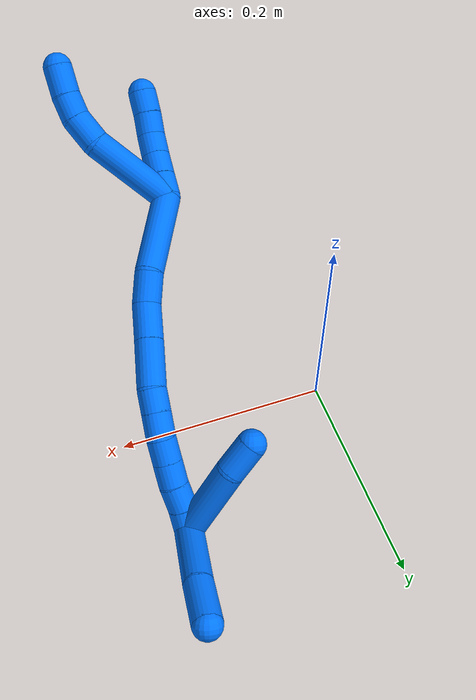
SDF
<sdf version="1.7">
 <world name="default">
  <model name="14">
   <static>0</static>
   <link name="14">
    <collision name="collision-cylinder-e_1_2_8">
     <pose>0.027162 -0.014382 0.022871 0.561353 0.78808 0.238593</pose>
     <geometry><cylinder><radius>0.0125</radius><length>0.076622</length></cylinder></geometry>
     <surface>
      <friction><ode><mu>1.16</mu><mu2>1.16</mu2><slip1>0</slip1><slip2>0</slip2></ode></friction>
      <contact><ode><kp>1e+06</kp><kd>1</kd><max_vel>0</max_vel><min_depth>0.001</min_depth></ode></contact>
     </surface>
    </collision>
    <visual name="visual-cylinder-e_1_2_8">
     <pose>0.027162 -0.014382 0.022871 0.561353 0.78808 0.238593</pose>
     <geometry><cylinder><radius>0.0125</radius><length>0.076622</length></cylinder></geometry>
     <material><ambient>0 0.462745 1 1</ambient></material>
    </visual>
    <collision name="collision-cylinder-e_2_8_9">
     <pose>0.060498 -0.034363 0.056399 0.483742 0.473828 0.11899</pose>
     <geometry><cylinder><radius>0.0125</radius><length>0.027058</length></cylinder></geometry>
     <surface>
      <friction><ode><mu>1.16</mu><mu2>1.16</mu2><slip1>0</slip1><slip2>0</slip2></ode></friction>
      <contact><ode><kp>1e+06</kp><kd>1</kd><max_vel>0</max_vel><min_depth>0.001</min_depth></ode></contact>
     </surface>
    </collision>
    <visual name="visual-cylinder-e_2_8_9">
     <pose>0.060498 -0.034363 0.056399 0.483742 0.473828 0.11899</pose>
     <geometry><cylinder><radius>0.0125</radius><length>0.027058</length></cylinder></geometry>
     <material><ambient>0 0.462745 1 1</ambient></material>
    </visual>
    <collision name="collision-cylinder-e_3_9_10">
     <pose>0.069905 -0.04219 0.076584 0.229696 0.319222 0.037136</pose>
     <geometry><cylinder><radius>0.0125</radius><length>0.02061</length></cylinder></geometry>
     <surface>
      <friction><ode><mu>1.16</mu><mu2>1.16</mu2><slip1>0</slip1><slip2>0</slip2></ode></friction>
      <contact><ode><kp>1e+06</kp><kd>1</kd><max_vel>0</max_vel><min_depth>0.001</min_depth></ode></contact>
     </surface>
    </collision>
    <visual name="visual-cylinder-e_3_9_10">
     <pose>0.069905 -0.04219 0.076584 0.229696 0.319222 0.037136</pose>
     <geometry><cylinder><radius>0.0125</radius><length>0.02061</length></cylinder></geometry>
     <material><ambient>0 0.462745 1 1</ambient></material>
    </visual>
    <collision name="collision-cylinder-e_4_10_6">
     <pose>0.075699 -0.046611 0.098517 0.174971 0.200427 0.017638</pose>
     <geometry><cylinder><radius>0.0125</radius><length>0.02571</length></cylinder></geometry>
     <surface>
      <friction><ode><mu>1.16</mu><mu2>1.16</mu2><slip1>0</slip1><slip2>0</slip2></ode></friction>
      <contact><ode><kp>1e+06</kp><kd>1</kd><max_vel>0</max_vel><min_depth>0.001</min_depth></ode></contact>
     </surface>
    </collision>
    <visual name="visual-cylinder-e_4_10_6">
     <pose>0.075699 -0.046611 0.098517 0.174971 0.200427 0.017638</pose>
     <geometry><cylinder><radius>0.0125</radius><length>0.02571</length></cylinder></geometry>
     <material><ambient>0 0.462745 1 1</ambient></material>
    </visual>
    <collision name="collision-cylinder-e_1_2_11">
     <pose>0.000128 -0.003327 0.00943 0.339153 0.012796 0.002191</pose>
     <geometry><cylinder><radius>0.0125</radius><length>0.02</length></cylinder></geometry>
     <surface>
      <friction><ode><mu>1.16</mu><mu2>1.16</mu2><slip1>0</slip1><slip2>0</slip2></ode></friction>
      <contact><ode><kp>1e+06</kp><kd>1</kd><max_vel>0</max_vel><min_depth>0.001</min_depth></ode></contact>
     </surface>
    </collision>
    <visual name="visual-cylinder-e_1_2_11">
     <pose>0.000128 -0.003327 0.00943 0.339153 0.012796 0.002191</pose>
     <geometry><cylinder><radius>0.0125</radius><length>0.02</length></cylinder></geometry>
     <material><ambient>0 0.462745 1 1</ambient></material>
    </visual>
    <collision name="collision-cylinder-e_2_11_12">
     <pose>0.000118 -0.01008 0.028253 0.349851 -0.01375 -0.00243</pose>
     <geometry><cylinder><radius>0.0125</radius><length>0.02</length></cylinder></geometry>
     <surface>
      <friction><ode><mu>1.16</mu><mu2>1.16</mu2><slip1>0</slip1><slip2>0</slip2></ode></friction>
      <contact><ode><kp>1e+06</kp><kd>1</kd><max_vel>0</max_vel><min_depth>0.001</min_depth></ode></contact>
     </surface>
    </collision>
    <visual name="visual-cylinder-e_2_11_12">
     <pose>0.000118 -0.01008 0.028253 0.349851 -0.01375 -0.00243</pose>
     <geometry><cylinder><radius>0.0125</radius><length>0.02</length></cylinder></geometry>
     <material><ambient>0 0.462745 1 1</ambient></material>
    </visual>
    <collision name="collision-cylinder-e_3_12_13">
     <pose>-9.3e-05 -0.016546 0.047173 0.308663 -0.007392 -0.00115</pose>
     <geometry><cylinder><radius>0.0125</radius><length>0.02</length></cylinder></geometry>
     <surface>
      <friction><ode><mu>1.16</mu><mu2>1.16</mu2><slip1>0</slip1><slip2>0</slip2></ode></friction>
      <contact><ode><kp>1e+06</kp><kd>1</kd><max_vel>0</max_vel><min_depth>0.001</min_depth></ode></contact>
     </surface>
    </collision>
    <visual name="visual-cylinder-e_3_12_13">
     <pose>-9.3e-05 -0.016546 0.047173 0.308663 -0.007392 -0.00115</pose>
     <geometry><cylinder><radius>0.0125</radius><length>0.02</length></cylinder></geometry>
     <material><ambient>0 0.462745 1 1</ambient></material>
    </visual>
    <collision name="collision-cylinder-e_4_13_14">
     <pose>0.000756 -0.020778 0.066586 0.120281 0.09242 0.005569</pose>
     <geometry><cylinder><radius>0.0125</radius><length>0.02</length></cylinder></geometry>
     <surface>
      <friction><ode><mu>1.16</mu><mu2>1.16</mu2><slip1>0</slip1><slip2>0</slip2></ode></friction>
      <contact><ode><kp>1e+06</kp><kd>1</kd><max_vel>0</max_vel><min_depth>0.001</min_depth></ode></contact>
     </surface>
    </collision>
    <visual name="visual-cylinder-e_4_13_14">
     <pose>0.000756 -0.020778 0.066586 0.120281 0.09242 0.005569</pose>
     <geometry><cylinder><radius>0.0125</radius><length>0.02</length></cylinder></geometry>
     <material><ambient>0 0.462745 1 1</ambient></material>
    </visual>
    <collision name="collision-cylinder-e_5_14_5">
     <pose>0.003051 -0.023698 0.086225 0.175006 0.137669 0.012096</pose>
     <geometry><cylinder><radius>0.0125</radius><length>0.02</length></cylinder></geometry>
     <surface>
      <friction><ode><mu>1.16</mu><mu2>1.16</mu2><slip1>0</slip1><slip2>0</slip2></ode></friction>
      <contact><ode><kp>1e+06</kp><kd>1</kd><max_vel>0</max_vel><min_depth>0.001</min_depth></ode></contact>
     </surface>
    </collision>
    <visual name="visual-cylinder-e_5_14_5">
     <pose>0.003051 -0.023698 0.086225 0.175006 0.137669 0.012096</pose>
     <geometry><cylinder><radius>0.0125</radius><length>0.02</length></cylinder></geometry>
     <material><ambient>0 0.462745 1 1</ambient></material>
    </visual>
    <collision name="collision-cylinder-e_1_2_15">
     <pose>0.015192 0.005304 -0.033649 -2.98526 0.419515 -2.43649</pose>
     <geometry><cylinder><radius>0.0125</radius><length>0.074597</length></cylinder></geometry>
     <surface>
      <friction><ode><mu>1.16</mu><mu2>1.16</mu2><slip1>0</slip1><slip2>0</slip2></ode></friction>
      <contact><ode><kp>1e+06</kp><kd>1</kd><max_vel>0</max_vel><min_depth>0.001</min_depth></ode></contact>
     </surface>
    </collision>
    <visual name="visual-cylinder-e_1_2_15">
     <pose>0.015192 0.005304 -0.033649 -2.98526 0.419515 -2.43649</pose>
     <geometry><cylinder><radius>0.0125</radius><length>0.074597</length></cylinder></geometry>
     <material><ambient>0 0.462745 1 1</ambient></material>
    </visual>
    <collision name="collision-cylinder-e_2_15_16">
     <pose>0.032577 0.011092 -0.081132 -3.10656 0.157071 -2.70353</pose>
     <geometry><cylinder><radius>0.0125</radius><length>0.028032</length></cylinder></geometry>
     <surface>
      <friction><ode><mu>1.16</mu><mu2>1.16</mu2><slip1>0</slip1><slip2>0</slip2></ode></friction>
      <contact><ode><kp>1e+06</kp><kd>1</kd><max_vel>0</max_vel><min_depth>0.001</min_depth></ode></contact>
     </surface>
    </collision>
    <visual name="visual-cylinder-e_2_15_16">
     <pose>0.032577 0.011092 -0.081132 -3.10656 0.157071 -2.70353</pose>
     <geometry><cylinder><radius>0.0125</radius><length>0.028032</length></cylinder></geometry>
     <material><ambient>0 0.462745 1 1</ambient></material>
    </visual>
    <collision name="collision-cylinder-e_3_16_17">
     <pose>0.03767 0.016243 -0.110374 -2.84754 0.178253 -1.08586</pose>
     <geometry><cylinder><radius>0.0125</radius><length>0.032714</length></cylinder></geometry>
     <surface>
      <friction><ode><mu>1.16</mu><mu2>1.16</mu2><slip1>0</slip1><slip2>0</slip2></ode></friction>
      <contact><ode><kp>1e+06</kp><kd>1</kd><max_vel>0</max_vel><min_depth>0.001</min_depth></ode></contact>
     </surface>
    </collision>
    <visual name="visual-cylinder-e_3_16_17">
     <pose>0.03767 0.016243 -0.110374 -2.84754 0.178253 -1.08586</pose>
     <geometry><cylinder><radius>0.0125</radius><length>0.032714</length></cylinder></geometry>
     <material><ambient>0 0.462745 1 1</ambient></material>
    </visual>
    <collision name="collision-cylinder-e_4_17_18">
     <pose>0.044348 0.026605 -0.145471 -2.85998 0.182247 -1.14523</pose>
     <geometry><cylinder><radius>0.0125</radius><length>0.041687</length></cylinder></geometry>
     <surface>
      <friction><ode><mu>1.16</mu><mu2>1.16</mu2><slip1>0</slip1><slip2>0</slip2></ode></friction>
      <contact><ode><kp>1e+06</kp><kd>1</kd><max_vel>0</max_vel><min_depth>0.001</min_depth></ode></contact>
     </surface>
    </collision>
    <visual name="visual-cylinder-e_4_17_18">
     <pose>0.044348 0.026605 -0.145471 -2.85998 0.182247 -1.14523</pose>
     <geometry><cylinder><radius>0.0125</radius><length>0.041687</length></cylinder></geometry>
     <material><ambient>0 0.462745 1 1</ambient></material>
    </visual>
    <collision name="collision-cylinder-e_5_18_19">
     <pose>0.047969 0.034764 -0.175016 -2.89666 -0.01537 0.124713</pose>
     <geometry><cylinder><radius>0.0125</radius><length>0.020317</length></cylinder></geometry>
     <surface>
      <friction><ode><mu>1.16</mu><mu2>1.16</mu2><slip1>0</slip1><slip2>0</slip2></ode></friction>
      <contact><ode><kp>1e+06</kp><kd>1</kd><max_vel>0</max_vel><min_depth>0.001</min_depth></ode></contact>
     </surface>
    </collision>
    <visual name="visual-cylinder-e_5_18_19">
     <pose>0.047969 0.034764 -0.175016 -2.89666 -0.01537 0.124713</pose>
     <geometry><cylinder><radius>0.0125</radius><length>0.020317</length></cylinder></geometry>
     <material><ambient>0 0.462745 1 1</ambient></material>
    </visual>
    <collision name="collision-cylinder-e_6_19_20">
     <pose>0.047683 0.039701 -0.194883 -2.89945 -0.012625 0.103679</pose>
     <geometry><cylinder><radius>0.0125</radius><length>0.02063</length></cylinder></geometry>
     <surface>
      <friction><ode><mu>1.16</mu><mu2>1.16</mu2><slip1>0</slip1><slip2>0</slip2></ode></friction>
      <contact><ode><kp>1e+06</kp><kd>1</kd><max_vel>0</max_vel><min_depth>0.001</min_depth></ode></contact>
     </surface>
    </collision>
    <visual name="visual-cylinder-e_6_19_20">
     <pose>0.047683 0.039701 -0.194883 -2.89945 -0.012625 0.103679</pose>
     <geometry><cylinder><radius>0.0125</radius><length>0.02063</length></cylinder></geometry>
     <material><ambient>0 0.462745 1 1</ambient></material>
    </visual>
    <collision name="collision-cylinder-e_7_20_21">
     <pose>0.045197 0.043128 -0.214886 -3.04635 -0.230565 2.3607</pose>
     <geometry><cylinder><radius>0.0125</radius><length>0.020617</length></cylinder></geometry>
     <surface>
      <friction><ode><mu>1.16</mu><mu2>1.16</mu2><slip1>0</slip1><slip2>0</slip2></ode></friction>
      <contact><ode><kp>1e+06</kp><kd>1</kd><max_vel>0</max_vel><min_depth>0.001</min_depth></ode></contact>
     </surface>
    </collision>
    <visual name="visual-cylinder-e_7_20_21">
     <pose>0.045197 0.043128 -0.214886 -3.04635 -0.230565 2.3607</pose>
     <geometry><cylinder><radius>0.0125</radius><length>0.020617</length></cylinder></geometry>
     <material><ambient>0 0.462745 1 1</ambient></material>
    </visual>
    <collision name="collision-cylinder-e_8_21_22">
     <pose>0.040596 0.045129 -0.234654 -3.03494 -0.224491 2.2571</pose>
     <geometry><cylinder><radius>0.0125</radius><length>0.020174</length></cylinder></geometry>
     <surface>
      <friction><ode><mu>1.16</mu><mu2>1.16</mu2><slip1>0</slip1><slip2>0</slip2></ode></friction>
      <contact><ode><kp>1e+06</kp><kd>1</kd><max_vel>0</max_vel><min_depth>0.001</min_depth></ode></contact>
     </surface>
    </collision>
    <visual name="visual-cylinder-e_8_21_22">
     <pose>0.040596 0.045129 -0.234654 -3.03494 -0.224491 2.2571</pose>
     <geometry><cylinder><radius>0.0125</radius><length>0.020174</length></cylinder></geometry>
     <material><ambient>0 0.462745 1 1</ambient></material>
    </visual>
    <collision name="collision-cylinder-e_9_22_23">
     <pose>0.034751 0.047393 -0.254271 -3.0185 -0.348219 2.46761</pose>
     <geometry><cylinder><radius>0.0125</radius><length>0.021093</length></cylinder></geometry>
     <surface>
      <friction><ode><mu>1.16</mu><mu2>1.16</mu2><slip1>0</slip1><slip2>0</slip2></ode></friction>
      <contact><ode><kp>1e+06</kp><kd>1</kd><max_vel>0</max_vel><min_depth>0.001</min_depth></ode></contact>
     </surface>
    </collision>
    <visual name="visual-cylinder-e_9_22_23">
     <pose>0.034751 0.047393 -0.254271 -3.0185 -0.348219 2.46761</pose>
     <geometry><cylinder><radius>0.0125</radius><length>0.021093</length></cylinder></geometry>
     <material><ambient>0 0.462745 1 1</ambient></material>
    </visual>
    <collision name="collision-cylinder-e_10_23_1">
     <pose>0.028245 0.048853 -0.273748 -3.11645 -0.292862 2.97153</pose>
     <geometry><cylinder><radius>0.0125</radius><length>0.020141</length></cylinder></geometry>
     <surface>
      <friction><ode><mu>1.16</mu><mu2>1.16</mu2><slip1>0</slip1><slip2>0</slip2></ode></friction>
      <contact><ode><kp>1e+06</kp><kd>1</kd><max_vel>0</max_vel><min_depth>0.001</min_depth></ode></contact>
     </surface>
    </collision>
    <visual name="visual-cylinder-e_10_23_1">
     <pose>0.028245 0.048853 -0.273748 -3.11645 -0.292862 2.97153</pose>
     <geometry><cylinder><radius>0.0125</radius><length>0.020141</length></cylinder></geometry>
     <material><ambient>0 0.462745 1 1</ambient></material>
    </visual>
    <collision name="collision-cylinder-e_1_1_24">
     <pose>0.023181 0.072427 -0.256432 -0.713478 -0.060439 0.022531</pose>
     <geometry><cylinder><radius>0.0125</radius><length>0.071431</length></cylinder></geometry>
     <surface>
      <friction><ode><mu>1.16</mu><mu2>1.16</mu2><slip1>0</slip1><slip2>0</slip2></ode></friction>
      <contact><ode><kp>1e+06</kp><kd>1</kd><max_vel>0</max_vel><min_depth>0.001</min_depth></ode></contact>
     </surface>
    </collision>
    <visual name="visual-cylinder-e_1_1_24">
     <pose>0.023181 0.072427 -0.256432 -0.713478 -0.060439 0.022531</pose>
     <geometry><cylinder><radius>0.0125</radius><length>0.071431</length></cylinder></geometry>
     <material><ambient>0 0.462745 1 1</ambient></material>
    </visual>
    <collision name="collision-cylinder-e_2_24_4">
     <pose>0.016707 0.103722 -0.218432 -0.624651 -0.306973 0.099822</pose>
     <geometry><cylinder><radius>0.0125</radius><length>0.028569</length></cylinder></geometry>
     <surface>
      <friction><ode><mu>1.16</mu><mu2>1.16</mu2><slip1>0</slip1><slip2>0</slip2></ode></friction>
      <contact><ode><kp>1e+06</kp><kd>1</kd><max_vel>0</max_vel><min_depth>0.001</min_depth></ode></contact>
     </surface>
    </collision>
    <visual name="visual-cylinder-e_2_24_4">
     <pose>0.016707 0.103722 -0.218432 -0.624651 -0.306973 0.099822</pose>
     <geometry><cylinder><radius>0.0125</radius><length>0.028569</length></cylinder></geometry>
     <material><ambient>0 0.462745 1 1</ambient></material>
    </visual>
    <collision name="collision-cylinder-e_1_1_25">
     <pose>0.040945 0.071642 -0.297831 -2.14055 0.527718 -0.917525</pose>
     <geometry><cylinder><radius>0.0125</radius><length>0.061986</length></cylinder></geometry>
     <surface>
      <friction><ode><mu>1.16</mu><mu2>1.16</mu2><slip1>0</slip1><slip2>0</slip2></ode></friction>
      <contact><ode><kp>1e+06</kp><kd>1</kd><max_vel>0</max_vel><min_depth>0.001</min_depth></ode></contact>
     </surface>
    </collision>
    <visual name="visual-cylinder-e_1_1_25">
     <pose>0.040945 0.071642 -0.297831 -2.14055 0.527718 -0.917525</pose>
     <geometry><cylinder><radius>0.0125</radius><length>0.061986</length></cylinder></geometry>
     <material><ambient>0 0.462745 1 1</ambient></material>
    </visual>
    <collision name="collision-cylinder-e_2_25_3">
     <pose>0.064733 0.107873 -0.322623 -2.21828 0.444955 -0.853521</pose>
     <geometry><cylinder><radius>0.0125</radius><length>0.038014</length></cylinder></geometry>
     <surface>
      <friction><ode><mu>1.16</mu><mu2>1.16</mu2><slip1>0</slip1><slip2>0</slip2></ode></friction>
      <contact><ode><kp>1e+06</kp><kd>1</kd><max_vel>0</max_vel><min_depth>0.001</min_depth></ode></contact>
     </surface>
    </collision>
    <visual name="visual-cylinder-e_2_25_3">
     <pose>0.064733 0.107873 -0.322623 -2.21828 0.444955 -0.853521</pose>
     <geometry><cylinder><radius>0.0125</radius><length>0.038014</length></cylinder></geometry>
     <material><ambient>0 0.462745 1 1</ambient></material>
    </visual>
    <collision name="collision-sphere-3">
     <pose>0.072914 0.121557 -0.332971 0 -0 0</pose>
     <geometry><sphere><radius>0.0125</radius></sphere></geometry>
     <surface>
      <friction><ode><mu>1.16</mu><mu2>1.16</mu2><slip1>0</slip1><slip2>0</slip2></ode></friction>
      <contact><ode><kp>1e+06</kp><kd>1</kd><max_vel>0</max_vel><min_depth>0.001</min_depth></ode></contact>
     </surface>
    </collision>
    <visual name="visual-sphere-3">
     <pose>0.072914 0.121557 -0.332971 0 -0 0</pose>
     <geometry><sphere><radius>0.0125</radius></sphere></geometry>
     <material><ambient>0 0.462745 1 1</ambient></material>
    </visual>
    <collision name="collision-sphere-25">
     <pose>0.056552 0.094189 -0.312275 0 -0 0</pose>
     <geometry><sphere><radius>0.0125</radius></sphere></geometry>
     <surface>
      <friction><ode><mu>1.16</mu><mu2>1.16</mu2><slip1>0</slip1><slip2>0</slip2></ode></friction>
      <contact><ode><kp>1e+06</kp><kd>1</kd><max_vel>0</max_vel><min_depth>0.001</min_depth></ode></contact>
     </surface>
    </collision>
    <visual name="visual-sphere-25">
     <pose>0.056552 0.094189 -0.312275 0 -0 0</pose>
     <geometry><sphere><radius>0.0125</radius></sphere></geometry>
     <material><ambient>0 0.462745 1 1</ambient></material>
    </visual>
    <collision name="collision-sphere-4">
     <pose>0.012391 0.111686 -0.207386 0 -0 0</pose>
     <geometry><sphere><radius>0.0125</radius></sphere></geometry>
     <surface>
      <friction><ode><mu>1.16</mu><mu2>1.16</mu2><slip1>0</slip1><slip2>0</slip2></ode></friction>
      <contact><ode><kp>1e+06</kp><kd>1</kd><max_vel>0</max_vel><min_depth>0.001</min_depth></ode></contact>
     </surface>
    </collision>
    <visual name="visual-sphere-4">
     <pose>0.012391 0.111686 -0.207386 0 -0 0</pose>
     <geometry><sphere><radius>0.0125</radius></sphere></geometry>
     <material><ambient>0 0.462745 1 1</ambient></material>
    </visual>
    <collision name="collision-sphere-24">
     <pose>0.021023 0.095759 -0.229477 0 -0 0</pose>
     <geometry><sphere><radius>0.0125</radius></sphere></geometry>
     <surface>
      <friction><ode><mu>1.16</mu><mu2>1.16</mu2><slip1>0</slip1><slip2>0</slip2></ode></friction>
      <contact><ode><kp>1e+06</kp><kd>1</kd><max_vel>0</max_vel><min_depth>0.001</min_depth></ode></contact>
     </surface>
    </collision>
    <visual name="visual-sphere-24">
     <pose>0.021023 0.095759 -0.229477 0 -0 0</pose>
     <geometry><sphere><radius>0.0125</radius></sphere></geometry>
     <material><ambient>0 0.462745 1 1</ambient></material>
    </visual>
    <collision name="collision-sphere-1">
     <pose>0.025338 0.049095 -0.283387 0 -0 0</pose>
     <geometry><sphere><radius>0.0125</radius></sphere></geometry>
     <surface>
      <friction><ode><mu>1.16</mu><mu2>1.16</mu2><slip1>0</slip1><slip2>0</slip2></ode></friction>
      <contact><ode><kp>1e+06</kp><kd>1</kd><max_vel>0</max_vel><min_depth>0.001</min_depth></ode></contact>
     </surface>
    </collision>
    <visual name="visual-sphere-1">
     <pose>0.025338 0.049095 -0.283387 0 -0 0</pose>
     <geometry><sphere><radius>0.0125</radius></sphere></geometry>
     <material><ambient>0 0.462745 1 1</ambient></material>
    </visual>
    <collision name="collision-sphere-23">
     <pose>0.031153 0.04861 -0.264109 0 -0 0</pose>
     <geometry><sphere><radius>0.0125</radius></sphere></geometry>
     <surface>
      <friction><ode><mu>1.16</mu><mu2>1.16</mu2><slip1>0</slip1><slip2>0</slip2></ode></friction>
      <contact><ode><kp>1e+06</kp><kd>1</kd><max_vel>0</max_vel><min_depth>0.001</min_depth></ode></contact>
     </surface>
    </collision>
    <visual name="visual-sphere-23">
     <pose>0.031153 0.04861 -0.264109 0 -0 0</pose>
     <geometry><sphere><radius>0.0125</radius></sphere></geometry>
     <material><ambient>0 0.462745 1 1</ambient></material>
    </visual>
    <collision name="collision-sphere-22">
     <pose>0.03835 0.046176 -0.244432 0 -0 0</pose>
     <geometry><sphere><radius>0.0125</radius></sphere></geometry>
     <surface>
      <friction><ode><mu>1.16</mu><mu2>1.16</mu2><slip1>0</slip1><slip2>0</slip2></ode></friction>
      <contact><ode><kp>1e+06</kp><kd>1</kd><max_vel>0</max_vel><min_depth>0.001</min_depth></ode></contact>
     </surface>
    </collision>
    <visual name="visual-sphere-22">
     <pose>0.03835 0.046176 -0.244432 0 -0 0</pose>
     <geometry><sphere><radius>0.0125</radius></sphere></geometry>
     <material><ambient>0 0.462745 1 1</ambient></material>
    </visual>
    <collision name="collision-sphere-21">
     <pose>0.042841 0.044082 -0.224876 0 -0 0</pose>
     <geometry><sphere><radius>0.0125</radius></sphere></geometry>
     <surface>
      <friction><ode><mu>1.16</mu><mu2>1.16</mu2><slip1>0</slip1><slip2>0</slip2></ode></friction>
      <contact><ode><kp>1e+06</kp><kd>1</kd><max_vel>0</max_vel><min_depth>0.001</min_depth></ode></contact>
     </surface>
    </collision>
    <visual name="visual-sphere-21">
     <pose>0.042841 0.044082 -0.224876 0 -0 0</pose>
     <geometry><sphere><radius>0.0125</radius></sphere></geometry>
     <material><ambient>0 0.462745 1 1</ambient></material>
    </visual>
    <collision name="collision-sphere-11">
     <pose>0.000256 -0.006653 0.018859 0 -0 0</pose>
     <geometry><sphere><radius>0.0125</radius></sphere></geometry>
     <surface>
      <friction><ode><mu>1.16</mu><mu2>1.16</mu2><slip1>0</slip1><slip2>0</slip2></ode></friction>
      <contact><ode><kp>1e+06</kp><kd>1</kd><max_vel>0</max_vel><min_depth>0.001</min_depth></ode></contact>
     </surface>
    </collision>
    <visual name="visual-sphere-11">
     <pose>0.000256 -0.006653 0.018859 0 -0 0</pose>
     <geometry><sphere><radius>0.0125</radius></sphere></geometry>
     <material><ambient>0 0.462745 1 1</ambient></material>
    </visual>
    <collision name="collision-sphere-6">
     <pose>0.078258 -0.048804 0.110922 0 -0 0</pose>
     <geometry><sphere><radius>0.0125</radius></sphere></geometry>
     <surface>
      <friction><ode><mu>1.16</mu><mu2>1.16</mu2><slip1>0</slip1><slip2>0</slip2></ode></friction>
      <contact><ode><kp>1e+06</kp><kd>1</kd><max_vel>0</max_vel><min_depth>0.001</min_depth></ode></contact>
     </surface>
    </collision>
    <visual name="visual-sphere-6">
     <pose>0.078258 -0.048804 0.110922 0 -0 0</pose>
     <geometry><sphere><radius>0.0125</radius></sphere></geometry>
     <material><ambient>0 0.462745 1 1</ambient></material>
    </visual>
    <collision name="collision-sphere-10">
     <pose>0.073139 -0.044418 0.086111 0 -0 0</pose>
     <geometry><sphere><radius>0.0125</radius></sphere></geometry>
     <surface>
      <friction><ode><mu>1.16</mu><mu2>1.16</mu2><slip1>0</slip1><slip2>0</slip2></ode></friction>
      <contact><ode><kp>1e+06</kp><kd>1</kd><max_vel>0</max_vel><min_depth>0.001</min_depth></ode></contact>
     </surface>
    </collision>
    <visual name="visual-sphere-10">
     <pose>0.073139 -0.044418 0.086111 0 -0 0</pose>
     <geometry><sphere><radius>0.0125</radius></sphere></geometry>
     <material><ambient>0 0.462745 1 1</ambient></material>
    </visual>
    <collision name="collision-sphere-9">
     <pose>0.066671 -0.039962 0.067057 0 -0 0</pose>
     <geometry><sphere><radius>0.0125</radius></sphere></geometry>
     <surface>
      <friction><ode><mu>1.16</mu><mu2>1.16</mu2><slip1>0</slip1><slip2>0</slip2></ode></friction>
      <contact><ode><kp>1e+06</kp><kd>1</kd><max_vel>0</max_vel><min_depth>0.001</min_depth></ode></contact>
     </surface>
    </collision>
    <visual name="visual-sphere-9">
     <pose>0.066671 -0.039962 0.067057 0 -0 0</pose>
     <geometry><sphere><radius>0.0125</radius></sphere></geometry>
     <material><ambient>0 0.462745 1 1</ambient></material>
    </visual>
    <collision name="collision-sphere-2">
     <geometry><sphere><radius>0.0125</radius></sphere></geometry>
     <surface>
      <friction><ode><mu>1.16</mu><mu2>1.16</mu2><slip1>0</slip1><slip2>0</slip2></ode></friction>
      <contact><ode><kp>1e+06</kp><kd>1</kd><max_vel>0</max_vel><min_depth>0.001</min_depth></ode></contact>
     </surface>
    </collision>
    <visual name="visual-sphere-2">
     <geometry><sphere><radius>0.0125</radius></sphere></geometry>
     <material><ambient>0 0.462745 1 1</ambient></material>
    </visual>
    <collision name="collision-sphere-19">
     <pose>0.047813 0.037227 -0.18487 0 -0 0</pose>
     <geometry><sphere><radius>0.0125</radius></sphere></geometry>
     <surface>
      <friction><ode><mu>1.16</mu><mu2>1.16</mu2><slip1>0</slip1><slip2>0</slip2></ode></friction>
      <contact><ode><kp>1e+06</kp><kd>1</kd><max_vel>0</max_vel><min_depth>0.001</min_depth></ode></contact>
     </surface>
    </collision>
    <visual name="visual-sphere-19">
     <pose>0.047813 0.037227 -0.18487 0 -0 0</pose>
     <geometry><sphere><radius>0.0125</radius></sphere></geometry>
     <material><ambient>0 0.462745 1 1</ambient></material>
    </visual>
    <collision name="collision-sphere-8">
     <pose>0.054325 -0.028764 0.045742 0 -0 0</pose>
     <geometry><sphere><radius>0.0125</radius></sphere></geometry>
     <surface>
      <friction><ode><mu>1.16</mu><mu2>1.16</mu2><slip1>0</slip1><slip2>0</slip2></ode></friction>
      <contact><ode><kp>1e+06</kp><kd>1</kd><max_vel>0</max_vel><min_depth>0.001</min_depth></ode></contact>
     </surface>
    </collision>
    <visual name="visual-sphere-8">
     <pose>0.054325 -0.028764 0.045742 0 -0 0</pose>
     <geometry><sphere><radius>0.0125</radius></sphere></geometry>
     <material><ambient>0 0.462745 1 1</ambient></material>
    </visual>
    <collision name="collision-sphere-12">
     <pose>-1.9e-05 -0.013508 0.037646 0 -0 0</pose>
     <geometry><sphere><radius>0.0125</radius></sphere></geometry>
     <surface>
      <friction><ode><mu>1.16</mu><mu2>1.16</mu2><slip1>0</slip1><slip2>0</slip2></ode></friction>
      <contact><ode><kp>1e+06</kp><kd>1</kd><max_vel>0</max_vel><min_depth>0.001</min_depth></ode></contact>
     </surface>
    </collision>
    <visual name="visual-sphere-12">
     <pose>-1.9e-05 -0.013508 0.037646 0 -0 0</pose>
     <geometry><sphere><radius>0.0125</radius></sphere></geometry>
     <material><ambient>0 0.462745 1 1</ambient></material>
    </visual>
    <collision name="collision-sphere-13">
     <pose>-0.000167 -0.019583 0.0567 0 -0 0</pose>
     <geometry><sphere><radius>0.0125</radius></sphere></geometry>
     <surface>
      <friction><ode><mu>1.16</mu><mu2>1.16</mu2><slip1>0</slip1><slip2>0</slip2></ode></friction>
      <contact><ode><kp>1e+06</kp><kd>1</kd><max_vel>0</max_vel><min_depth>0.001</min_depth></ode></contact>
     </surface>
    </collision>
    <visual name="visual-sphere-13">
     <pose>-0.000167 -0.019583 0.0567 0 -0 0</pose>
     <geometry><sphere><radius>0.0125</radius></sphere></geometry>
     <material><ambient>0 0.462745 1 1</ambient></material>
    </visual>
    <collision name="collision-sphere-14">
     <pose>0.001679 -0.021973 0.076471 0 -0 0</pose>
     <geometry><sphere><radius>0.0125</radius></sphere></geometry>
     <surface>
      <friction><ode><mu>1.16</mu><mu2>1.16</mu2><slip1>0</slip1><slip2>0</slip2></ode></friction>
      <contact><ode><kp>1e+06</kp><kd>1</kd><max_vel>0</max_vel><min_depth>0.001</min_depth></ode></contact>
     </surface>
    </collision>
    <visual name="visual-sphere-14">
     <pose>0.001679 -0.021973 0.076471 0 -0 0</pose>
     <geometry><sphere><radius>0.0125</radius></sphere></geometry>
     <material><ambient>0 0.462745 1 1</ambient></material>
    </visual>
    <collision name="collision-sphere-5">
     <pose>0.004424 -0.025422 0.095979 0 -0 0</pose>
     <geometry><sphere><radius>0.0125</radius></sphere></geometry>
     <surface>
      <friction><ode><mu>1.16</mu><mu2>1.16</mu2><slip1>0</slip1><slip2>0</slip2></ode></friction>
      <contact><ode><kp>1e+06</kp><kd>1</kd><max_vel>0</max_vel><min_depth>0.001</min_depth></ode></contact>
     </surface>
    </collision>
    <visual name="visual-sphere-5">
     <pose>0.004424 -0.025422 0.095979 0 -0 0</pose>
     <geometry><sphere><radius>0.0125</radius></sphere></geometry>
     <material><ambient>0 0.462745 1 1</ambient></material>
    </visual>
    <collision name="collision-sphere-15">
     <pose>0.030385 0.010607 -0.067297 0 -0 0</pose>
     <geometry><sphere><radius>0.0125</radius></sphere></geometry>
     <surface>
      <friction><ode><mu>1.16</mu><mu2>1.16</mu2><slip1>0</slip1><slip2>0</slip2></ode></friction>
      <contact><ode><kp>1e+06</kp><kd>1</kd><max_vel>0</max_vel><min_depth>0.001</min_depth></ode></contact>
     </surface>
    </collision>
    <visual name="visual-sphere-15">
     <pose>0.030385 0.010607 -0.067297 0 -0 0</pose>
     <geometry><sphere><radius>0.0125</radius></sphere></geometry>
     <material><ambient>0 0.462745 1 1</ambient></material>
    </visual>
    <collision name="collision-sphere-16">
     <pose>0.034769 0.011577 -0.094967 0 -0 0</pose>
     <geometry><sphere><radius>0.0125</radius></sphere></geometry>
     <surface>
      <friction><ode><mu>1.16</mu><mu2>1.16</mu2><slip1>0</slip1><slip2>0</slip2></ode></friction>
      <contact><ode><kp>1e+06</kp><kd>1</kd><max_vel>0</max_vel><min_depth>0.001</min_depth></ode></contact>
     </surface>
    </collision>
    <visual name="visual-sphere-16">
     <pose>0.034769 0.011577 -0.094967 0 -0 0</pose>
     <geometry><sphere><radius>0.0125</radius></sphere></geometry>
     <material><ambient>0 0.462745 1 1</ambient></material>
    </visual>
    <collision name="collision-sphere-17">
     <pose>0.04057 0.020908 -0.125781 0 -0 0</pose>
     <geometry><sphere><radius>0.0125</radius></sphere></geometry>
     <surface>
      <friction><ode><mu>1.16</mu><mu2>1.16</mu2><slip1>0</slip1><slip2>0</slip2></ode></friction>
      <contact><ode><kp>1e+06</kp><kd>1</kd><max_vel>0</max_vel><min_depth>0.001</min_depth></ode></contact>
     </surface>
    </collision>
    <visual name="visual-sphere-17">
     <pose>0.04057 0.020908 -0.125781 0 -0 0</pose>
     <geometry><sphere><radius>0.0125</radius></sphere></geometry>
     <material><ambient>0 0.462745 1 1</ambient></material>
    </visual>
    <collision name="collision-sphere-18">
     <pose>0.048125 0.032301 -0.165162 0 -0 0</pose>
     <geometry><sphere><radius>0.0125</radius></sphere></geometry>
     <surface>
      <friction><ode><mu>1.16</mu><mu2>1.16</mu2><slip1>0</slip1><slip2>0</slip2></ode></friction>
      <contact><ode><kp>1e+06</kp><kd>1</kd><max_vel>0</max_vel><min_depth>0.001</min_depth></ode></contact>
     </surface>
    </collision>
    <visual name="visual-sphere-18">
     <pose>0.048125 0.032301 -0.165162 0 -0 0</pose>
     <geometry><sphere><radius>0.0125</radius></sphere></geometry>
     <material><ambient>0 0.462745 1 1</ambient></material>
    </visual>
    <collision name="collision-sphere-20">
     <pose>0.047553 0.042174 -0.204896 0 -0 0</pose>
     <geometry><sphere><radius>0.0125</radius></sphere></geometry>
     <surface>
      <friction><ode><mu>1.16</mu><mu2>1.16</mu2><slip1>0</slip1><slip2>0</slip2></ode></friction>
      <contact><ode><kp>1e+06</kp><kd>1</kd><max_vel>0</max_vel><min_depth>0.001</min_depth></ode></contact>
     </surface>
    </collision>
    <visual name="visual-sphere-20">
     <pose>0.047553 0.042174 -0.204896 0 -0 0</pose>
     <geometry><sphere><radius>0.0125</radius></sphere></geometry>
     <material><ambient>0 0.462745 1 1</ambient></material>
    </visual>
    <inertial>
     <pose>0.032606 0.024994 -0.113622 0 -0 0</pose>
     <mass>0.75</mass>
     <inertia><ixx>3.7e-05</ixx><ixy>0</ixy><ixz>0</ixz><iyy>7.4e-05</iyy><iyz>0</iyz><izz>-9.7e-05</izz></inertia>
    </inertial>
   </link>
   <pose>0.110829 -0.117059 0.195567 0.710859 -0.55442 0.24039</pose>
  </model>
 </world>
</sdf>
